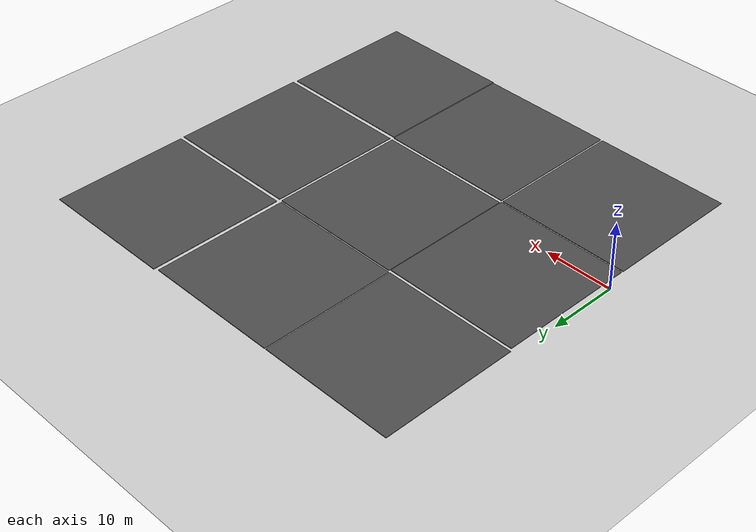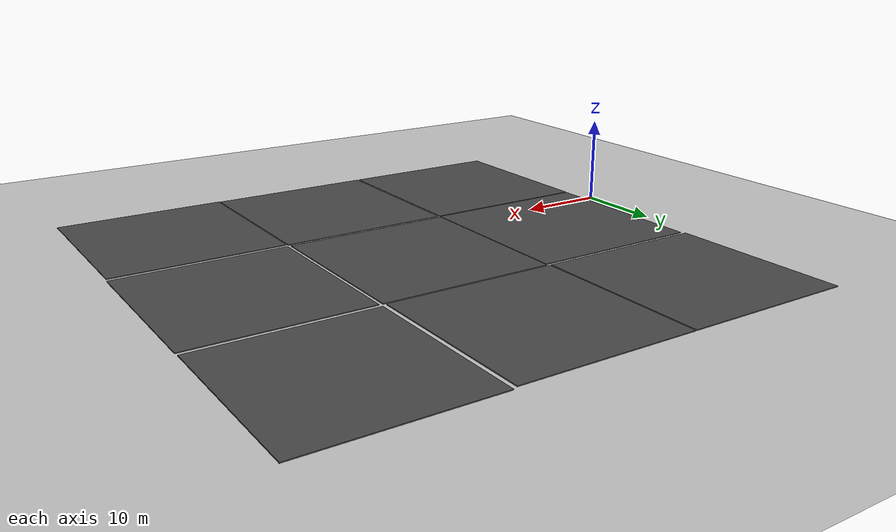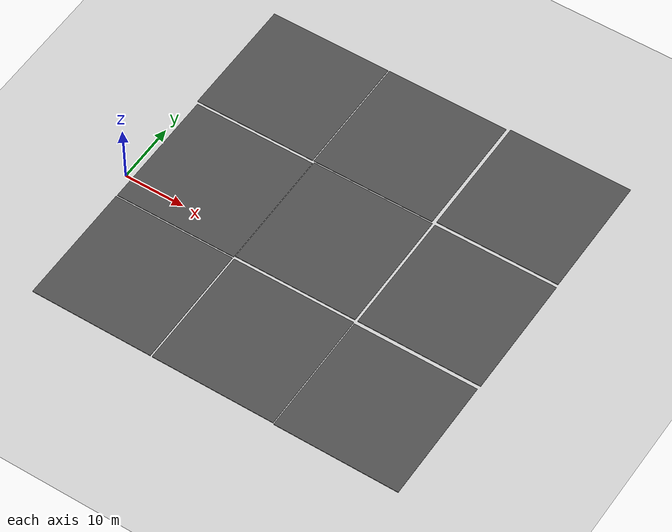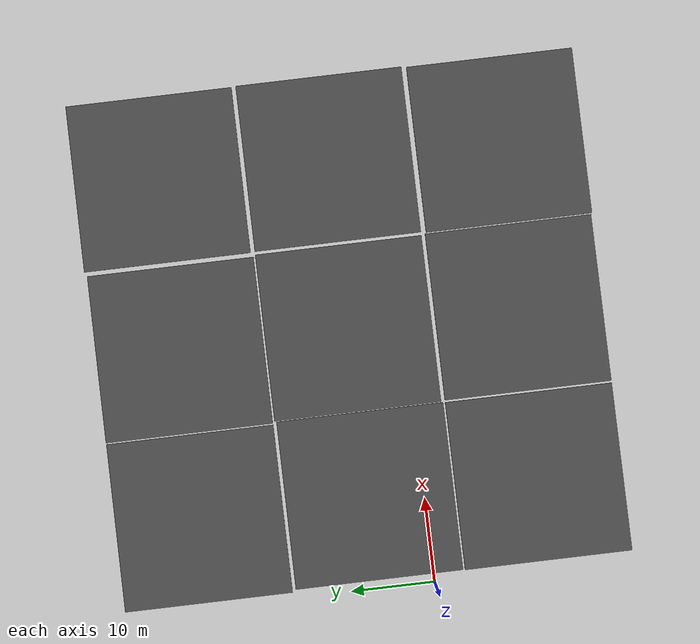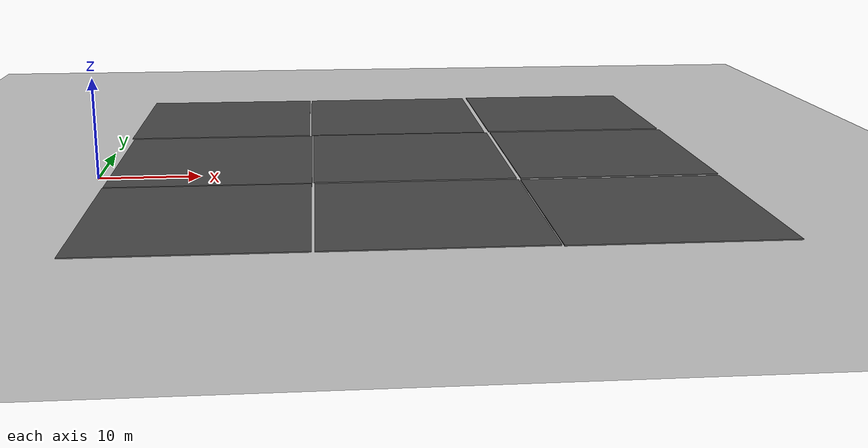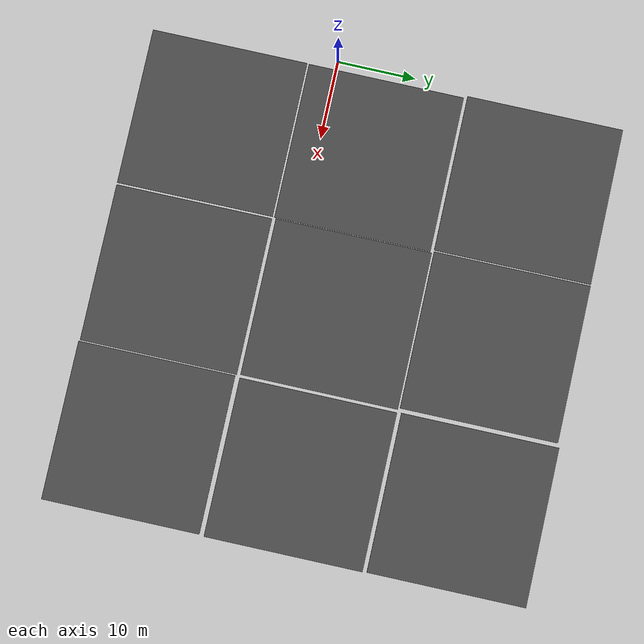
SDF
<sdf version="1.6">
 <world name="default">
  <light name="sun" type="directional">
   <pose>0 0 10 0 -0 0</pose>
   <diffuse>0.8 0.8 0.8 1</diffuse>
   <specular>0.2 0.2 0.2 1</specular>
   <attenuation>
    <range>1000</range>
    <constant>0.9</constant>
    <linear>0.01</linear>
    <quadratic>0.001</quadratic>
   </attenuation>
   <direction>-0.5 0.1 -0.9</direction>
  </light>
  <gravity>0 0 -9.8</gravity>
  <magnetic_field>6e-06 2.3e-05 -4.2e-05</magnetic_field>
  <atmosphere type="adiabatic"/>
  <physics name="default_physics" default="0" type="ode">
   <max_step_size>0.001</max_step_size>
   <real_time_factor>1</real_time_factor>
   <real_time_update_rate>1000</real_time_update_rate>
  </physics>
  <scene><ambient>0.4 0.4 0.4 1</ambient><background>0.7 0.7 0.7 1</background><shadows>1</shadows></scene>
  <audio><device>default</device></audio>
  <spherical_coordinates>
   <surface_model>EARTH_WGS84</surface_model>
   <latitude_deg>0</latitude_deg>
   <longitude_deg>0</longitude_deg>
   <elevation>0</elevation>
   <heading_deg>0</heading_deg>
  </spherical_coordinates>
  <model name="my_ground_plane">
   <static>1</static>
   <link name="link">
    <collision name="collision">
     <geometry><plane><normal>0 0 1</normal><size>100 100</size></plane></geometry>
     <surface><friction><ode><mu>100</mu><mu2>50</mu2></ode></friction></surface>
    </collision>
    <visual name="visual">
     <cast_shadows>0</cast_shadows>
     <geometry><plane><normal>0 0 1</normal><size>100 100</size></plane></geometry>
     <material>
      <script>
       <uri>model://my_ground_plane/materials/scripts</uri>
       <uri>model://my_ground_plane/materials/textures/</uri>
       <name>MyGroundPlane/Image</name>
      </script>
     </material>
    </visual>
   </link>
   <pose>24.4472 2.26506 0 0 -0 0</pose>
  </model>
  <model name="asphalt_plane">
   <static>1</static>
   <link name="link">
    <collision name="collision"><geometry><box><size>20 20 0.1</size></box></geometry></collision>
    <visual name="visual">
     <cast_shadows>0</cast_shadows>
     <geometry><box><size>20 20 0.1</size></box></geometry>
     <material>
      <script>
       <uri>model://asphalt_plane/materials/scripts</uri>
       <uri>model://asphalt_plane/materials/textures</uri>
       <name>vrc/asphalt</name>
      </script>
     </material>
    </visual>
   </link>
   <pose>30.9294 26.9403 0 0 -0 0</pose>
  </model>
  <model name="asphalt_plane_0">
   <static>1</static>
   <link name="link">
    <collision name="collision"><geometry><box><size>20 20 0.1</size></box></geometry></collision>
    <visual name="visual">
     <cast_shadows>0</cast_shadows>
     <geometry><box><size>20 20 0.1</size></box></geometry>
     <material>
      <script>
       <uri>model://asphalt_plane/materials/scripts</uri>
       <uri>model://asphalt_plane/materials/textures</uri>
       <name>vrc/asphalt</name>
      </script>
     </material>
    </visual>
   </link>
   <pose>10.7417 26.9182 0 0 -0 0</pose>
  </model>
  <model name="asphalt_plane_clone">
   <static>1</static>
   <link name="link">
    <collision name="collision"><geometry><box><size>20 20 0.1</size></box></geometry></collision>
    <visual name="visual">
     <cast_shadows>0</cast_shadows>
     <geometry><box><size>20 20 0.1</size></box></geometry>
     <material>
      <script>
       <uri>model://asphalt_plane/materials/scripts</uri>
       <uri>model://asphalt_plane/materials/textures</uri>
       <name>vrc/asphalt</name>
      </script>
     </material>
    </visual>
   </link>
   <pose>51.484 27.2248 0 0 -0 0</pose>
  </model>
  <model name="asphalt_plane_clone_0">
   <static>1</static>
   <link name="link">
    <collision name="collision"><geometry><box><size>20 20 0.1</size></box></geometry></collision>
    <visual name="visual">
     <cast_shadows>0</cast_shadows>
     <geometry><box><size>20 20 0.1</size></box></geometry>
     <material>
      <script>
       <uri>model://asphalt_plane/materials/scripts</uri>
       <uri>model://asphalt_plane/materials/textures</uri>
       <name>vrc/asphalt</name>
      </script>
     </material>
    </visual>
   </link>
   <pose>51.5599 6.68053 0 0 -0 0</pose>
  </model>
  <model name="asphalt_plane_clone_1">
   <static>1</static>
   <link name="link">
    <collision name="collision"><geometry><box><size>20 20 0.1</size></box></geometry></collision>
    <visual name="visual">
     <cast_shadows>0</cast_shadows>
     <geometry><box><size>20 20 0.1</size></box></geometry>
     <material>
      <script>
       <uri>model://asphalt_plane/materials/scripts</uri>
       <uri>model://asphalt_plane/materials/textures</uri>
       <name>vrc/asphalt</name>
      </script>
     </material>
    </visual>
   </link>
   <pose>31.1484 6.68921 0 0 -0 0</pose>
  </model>
  <model name="asphalt_plane_clone_2">
   <static>1</static>
   <link name="link">
    <collision name="collision"><geometry><box><size>20 20 0.1</size></box></geometry></collision>
    <visual name="visual">
     <cast_shadows>0</cast_shadows>
     <geometry><box><size>20 20 0.1</size></box></geometry>
     <material>
      <script>
       <uri>model://asphalt_plane/materials/scripts</uri>
       <uri>model://asphalt_plane/materials/textures</uri>
       <name>vrc/asphalt</name>
      </script>
     </material>
    </visual>
   </link>
   <pose>11.0379 6.47333 0 0 -0 0</pose>
  </model>
  <model name="asphalt_plane_clone_3">
   <static>1</static>
   <link name="link">
    <collision name="collision"><geometry><box><size>20 20 0.1</size></box></geometry></collision>
    <visual name="visual">
     <cast_shadows>0</cast_shadows>
     <geometry><box><size>20 20 0.1</size></box></geometry>
     <material>
      <script>
       <uri>model://asphalt_plane/materials/scripts</uri>
       <uri>model://asphalt_plane/materials/textures</uri>
       <name>vrc/asphalt</name>
      </script>
     </material>
    </visual>
   </link>
   <pose>10.9896 -13.7789 0 0 -0 0</pose>
  </model>
  <model name="asphalt_plane_clone_4">
   <static>1</static>
   <link name="link">
    <collision name="collision"><geometry><box><size>20 20 0.1</size></box></geometry></collision>
    <visual name="visual">
     <cast_shadows>0</cast_shadows>
     <geometry><box><size>20 20 0.1</size></box></geometry>
     <material>
      <script>
       <uri>model://asphalt_plane/materials/scripts</uri>
       <uri>model://asphalt_plane/materials/textures</uri>
       <name>vrc/asphalt</name>
      </script>
     </material>
    </visual>
   </link>
   <pose>31.2613 -13.7855 0 0 -0 0</pose>
  </model>
  <model name="asphalt_plane_clone_5">
   <static>1</static>
   <link name="link">
    <collision name="collision"><geometry><box><size>20 20 0.1</size></box></geometry></collision>
    <visual name="visual">
     <cast_shadows>0</cast_shadows>
     <geometry><box><size>20 20 0.1</size></box></geometry>
     <material>
      <script>
       <uri>model://asphalt_plane/materials/scripts</uri>
       <uri>model://asphalt_plane/materials/textures</uri>
       <name>vrc/asphalt</name>
      </script>
     </material>
    </visual>
   </link>
   <pose>51.429 -13.9333 0 0 -0 0</pose>
  </model>
 </world>
</sdf>
